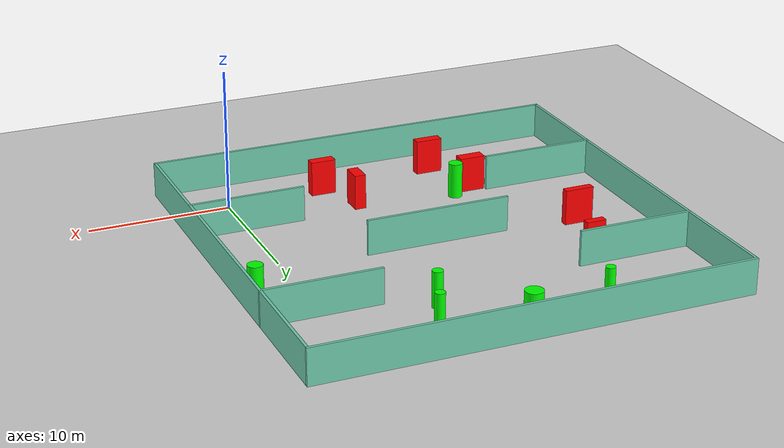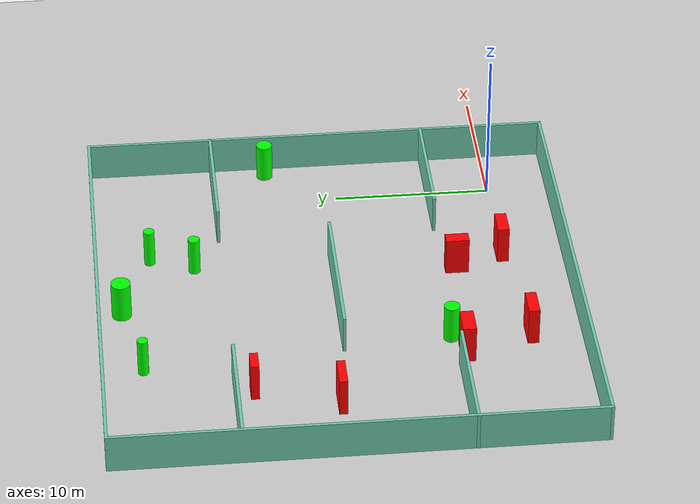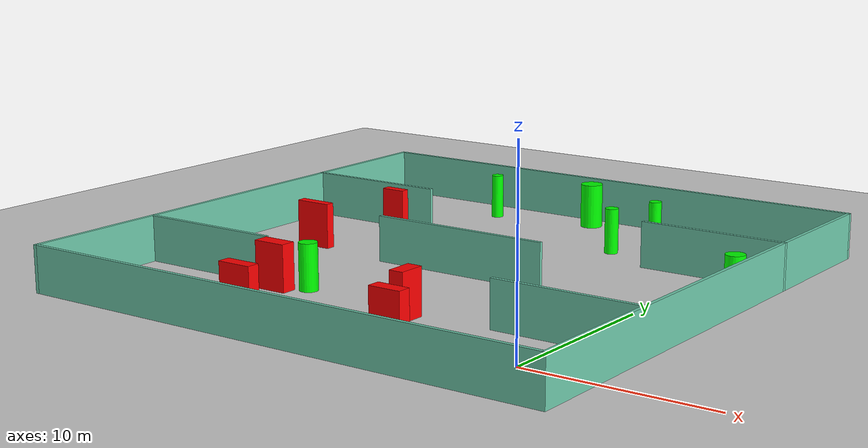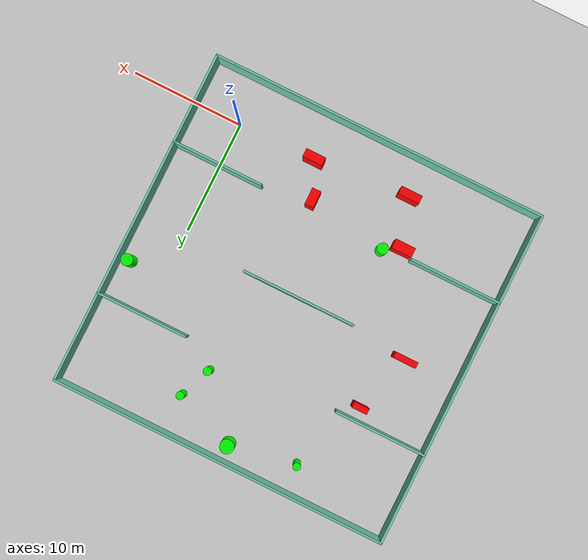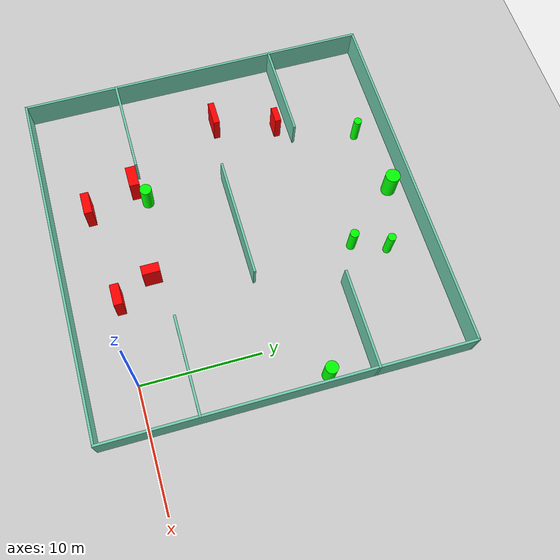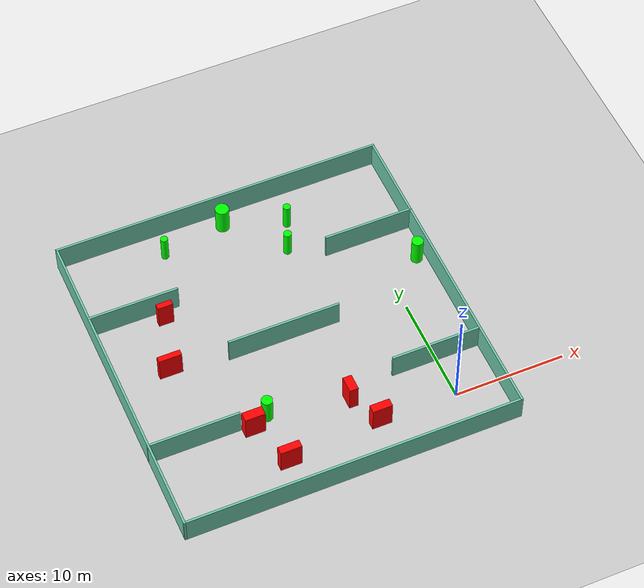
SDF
<sdf version="1.7">
 <world name="default">
  <light name="sun" type="directional">
   <pose>0 0 10 0 -0 0</pose>
   <diffuse>0.8 0.8 0.8 1</diffuse>
   <specular>0.2 0.2 0.2 1</specular>
   <attenuation>
    <range>1000</range>
    <constant>0.9</constant>
    <linear>0.01</linear>
    <quadratic>0.001</quadratic>
   </attenuation>
   <direction>-0.5 0.1 -0.9</direction>
   <spot><inner_angle>0</inner_angle><outer_angle>0</outer_angle><falloff>0</falloff></spot>
  </light>
  <model name="ground_plane">
   <static>1</static>
   <link name="link">
    <collision name="collision">
     <geometry><plane><normal>0 0 1</normal><size>100 100</size></plane></geometry>
     <surface>
      <contact><collide_bitmask>65535</collide_bitmask></contact>
      <friction><ode><mu>100</mu><mu2>50</mu2></ode></friction>
     </surface>
    </collision>
    <visual name="visual">
     <cast_shadows>0</cast_shadows>
     <geometry><plane><normal>0 0 1</normal><size>100 100</size></plane></geometry>
     <material>
      <script><uri>file://media/materials/scripts/gazebo.material</uri><name>Gazebo/Grey</name></script>
     </material>
    </visual>
   </link>
  </model>
  <gravity>0 0 -9.8</gravity>
  <magnetic_field>6e-06 2.3e-05 -4.2e-05</magnetic_field>
  <atmosphere type="adiabatic"/>
  <physics type="ode">
   <max_step_size>0.001</max_step_size>
   <real_time_factor>1</real_time_factor>
   <real_time_update_rate>1000</real_time_update_rate>
  </physics>
  <scene><ambient>0.4 0.4 0.4 1</ambient><background>0.7 0.7 0.7 1</background><shadows>1</shadows></scene>
  <spherical_coordinates>
   <surface_model>EARTH_WGS84</surface_model>
   <latitude_deg>0</latitude_deg>
   <longitude_deg>0</longitude_deg>
   <elevation>0</elevation>
   <heading_deg>0</heading_deg>
  </spherical_coordinates>
  <model name="my_base_walls">
   <link name="Wall_10">
    <collision name="Wall_10_Collision">
     <geometry><box><size>8.2 0.2 2.5</size></box></geometry>
     <pose>0 0 1.25 0 -0 0</pose>
    </collision>
    <visual name="Wall_10_Visual">
     <pose>0 0 1.25 0 -0 0</pose>
     <geometry><box><size>8.2 0.2 2.5</size></box></geometry>
     <material>
      <script><uri>file://media/materials/scripts/gazebo.material</uri><name>Gazebo/Grey</name></script>
      <ambient>0.435294 0.796078 0.67451 1</ambient>
     </material>
     <meta><layer>0</layer></meta>
    </visual>
    <pose>-11 -7 0 0 -0 0</pose>
   </link>
   <link name="Wall_12">
    <collision name="Wall_12_Collision">
     <geometry><box><size>8.2 0.2 2.5</size></box></geometry>
     <pose>0 0 1.25 0 -0 0</pose>
    </collision>
    <visual name="Wall_12_Visual">
     <pose>0 0 1.25 0 -0 0</pose>
     <geometry><box><size>8.2 0.2 2.5</size></box></geometry>
     <material>
      <script><uri>file://media/materials/scripts/gazebo.material</uri><name>Gazebo/Grey</name></script>
      <ambient>0.435294 0.796078 0.67451 1</ambient>
     </material>
     <meta><layer>0</layer></meta>
    </visual>
    <pose>-11 7 0 0 -0 0</pose>
   </link>
   <link name="Wall_14">
    <collision name="Wall_14_Collision">
     <geometry><box><size>8.2 0.2 2.5</size></box></geometry>
     <pose>0 0 1.25 0 -0 0</pose>
    </collision>
    <visual name="Wall_14_Visual">
     <pose>0 0 1.25 0 -0 0</pose>
     <geometry><box><size>8.2 0.2 2.5</size></box></geometry>
     <material>
      <script><uri>file://media/materials/scripts/gazebo.material</uri><name>Gazebo/Grey</name></script>
      <ambient>0.435294 0.796078 0.67451 1</ambient>
     </material>
     <meta><layer>0</layer></meta>
    </visual>
    <pose>11 7 0 0 -0 3.14159</pose>
   </link>
   <link name="Wall_16">
    <collision name="Wall_16_Collision">
     <geometry><box><size>10.2 0.2 2.5</size></box></geometry>
     <pose>0 0 1.25 0 -0 0</pose>
    </collision>
    <visual name="Wall_16_Visual">
     <pose>0 0 1.25 0 -0 0</pose>
     <geometry><box><size>10.2 0.2 2.5</size></box></geometry>
     <material>
      <script><uri>file://media/materials/scripts/gazebo.material</uri><name>Gazebo/Grey</name></script>
      <ambient>0.435294 0.796078 0.67451 1</ambient>
     </material>
     <meta><layer>0</layer></meta>
    </visual>
    <pose>0 0 0 0 -0 3.14159</pose>
   </link>
   <link name="Wall_2">
    <collision name="Wall_2_Collision">
     <geometry><box><size>30.2 0.2 2.5</size></box></geometry>
     <pose>0 0 1.25 0 -0 0</pose>
    </collision>
    <visual name="Wall_2_Visual">
     <pose>0 0 1.25 0 -0 0</pose>
     <geometry><box><size>30.2 0.2 2.5</size></box></geometry>
     <material>
      <script><uri>file://media/materials/scripts/gazebo.material</uri><name>Gazebo/Grey</name></script>
      <ambient>0.435294 0.796078 0.67451 1</ambient>
     </material>
     <meta><layer>0</layer></meta>
    </visual>
    <pose>0 -15 0 0 -0 3.14159</pose>
   </link>
   <link name="Wall_3">
    <collision name="Wall_3_Collision">
     <geometry><box><size>30.2 0.2 2.5</size></box></geometry>
     <pose>0 0 1.25 0 -0 0</pose>
    </collision>
    <visual name="Wall_3_Visual">
     <pose>0 0 1.25 0 -0 0</pose>
     <geometry><box><size>30.2 0.2 2.5</size></box></geometry>
     <material>
      <script><uri>file://media/materials/scripts/gazebo.material</uri><name>Gazebo/Grey</name></script>
      <ambient>0.435294 0.796078 0.67451 1</ambient>
     </material>
     <meta><layer>0</layer></meta>
    </visual>
    <pose>-15 0 0 0 -0 1.5708</pose>
   </link>
   <link name="Wall_4">
    <collision name="Wall_4_Collision">
     <geometry><box><size>30.2 0.2 2.5</size></box></geometry>
     <pose>0 0 1.25 0 -0 0</pose>
    </collision>
    <visual name="Wall_4_Visual">
     <pose>0 0 1.25 0 -0 0</pose>
     <geometry><box><size>30.2 0.2 2.5</size></box></geometry>
     <material>
      <script><uri>file://media/materials/scripts/gazebo.material</uri><name>Gazebo/Grey</name></script>
      <ambient>0.435294 0.796078 0.67451 1</ambient>
     </material>
     <meta><layer>0</layer></meta>
    </visual>
    <pose>0 15 0 0 -0 0</pose>
   </link>
   <link name="Wall_6">
    <collision name="Wall_6_Collision">
     <geometry><box><size>30.2 0.2 2.5</size></box></geometry>
     <pose>0 0 1.25 0 -0 0</pose>
    </collision>
    <visual name="Wall_6_Visual">
     <pose>0 0 1.25 0 -0 0</pose>
     <geometry><box><size>30.2 0.2 2.5</size></box></geometry>
     <material>
      <script><uri>file://media/materials/scripts/gazebo.material</uri><name>Gazebo/Grey</name></script>
      <ambient>0.435294 0.796078 0.67451 1</ambient>
     </material>
     <meta><layer>0</layer></meta>
    </visual>
    <pose>15 0 0 0 -0 1.5708</pose>
   </link>
   <link name="Wall_8">
    <collision name="Wall_8_Collision">
     <geometry><box><size>8.2 0.2 2.5</size></box></geometry>
     <pose>0 0 1.25 0 -0 0</pose>
    </collision>
    <visual name="Wall_8_Visual">
     <pose>0 0 1.25 0 -0 0</pose>
     <geometry><box><size>8.2 0.2 2.5</size></box></geometry>
     <material>
      <script><uri>file://media/materials/scripts/gazebo.material</uri><name>Gazebo/Grey</name></script>
      <ambient>0.435294 0.796078 0.67451 1</ambient>
     </material>
     <meta><layer>0</layer></meta>
    </visual>
    <pose>11 -7 0 0 -0 3.14159</pose>
   </link>
   <static>1</static>
   <pose>-11 11 0 0 -0 0</pose>
  </model>
  <model name="cylinder1">
   <static>1</static>
   <link name="link">
    <inertial>
     <mass>1</mass>
     <inertia><ixx>0.5</ixx><ixy>0</ixy><ixz>0</ixz><iyy>0.5</iyy><iyz>0</iyz><izz>1</izz></inertia>
    </inertial>
    <collision name="collision">
     <geometry><cylinder><radius>0.3342478060356267</radius><length>2.5</length></cylinder></geometry>
    </collision>
    <visual name="visual">
     <geometry><cylinder><radius>0.3342478060356267</radius><length>2.5</length></cylinder></geometry>
     <material>
      <ambient>0 1 0 1</ambient>
      <diffuse>0 1 0 1</diffuse>
      <specular>0.1 0.1 0.1 1</specular>
      <emissive>0 0 0 0</emissive>
     </material>
    </visual>
   </link>
   <pose>-17.02915045358167 23.45816184880063 1.25 0 0 0</pose>
  </model>
  <model name="cylinder2">
   <static>1</static>
   <link name="link">
    <inertial>
     <mass>1</mass>
     <inertia><ixx>0.5</ixx><ixy>0</ixy><ixz>0</ixz><iyy>0.5</iyy><iyz>0</iyz><izz>1</izz></inertia>
    </inertial>
    <collision name="collision">
     <geometry><cylinder><radius>0.6177499888174223</radius><length>2.5</length></cylinder></geometry>
    </collision>
    <visual name="visual">
     <geometry><cylinder><radius>0.6177499888174223</radius><length>2.5</length></cylinder></geometry>
     <material>
      <ambient>0 1 0 1</ambient>
      <diffuse>0 1 0 1</diffuse>
      <specular>0.1 0.1 0.1 1</specular>
      <emissive>0 0 0 0</emissive>
     </material>
    </visual>
   </link>
   <pose>-11.160935900040542 24.545791862449985 1.25 0 0 0</pose>
  </model>
  <model name="cylinder3">
   <static>1</static>
   <link name="link">
    <inertial>
     <mass>1</mass>
     <inertia><ixx>0.5</ixx><ixy>0</ixy><ixz>0</ixz><iyy>0.5</iyy><iyz>0</iyz><izz>1</izz></inertia>
    </inertial>
    <collision name="collision">
     <geometry><cylinder><radius>0.49368491179476887</radius><length>2.5</length></cylinder></geometry>
    </collision>
    <visual name="visual">
     <geometry><cylinder><radius>0.49368491179476887</radius><length>2.5</length></cylinder></geometry>
     <material>
      <ambient>0 1 0 1</ambient>
      <diffuse>0 1 0 1</diffuse>
      <specular>0.1 0.1 0.1 1</specular>
      <emissive>0 0 0 0</emissive>
     </material>
    </visual>
   </link>
   <pose>-15.394696040755878 4.265007991669336 1.25 0 0 0</pose>
  </model>
  <model name="cylinder4">
   <static>1</static>
   <link name="link">
    <inertial>
     <mass>1</mass>
     <inertia><ixx>0.5</ixx><ixy>0</ixy><ixz>0</ixz><iyy>0.5</iyy><iyz>0</iyz><izz>1</izz></inertia>
    </inertial>
    <collision name="collision">
     <geometry><cylinder><radius>0.3469649395759377</radius><length>2.5</length></cylinder></geometry>
    </collision>
    <visual name="visual">
     <geometry><cylinder><radius>0.3469649395759377</radius><length>2.5</length></cylinder></geometry>
     <material>
      <ambient>0 1 0 1</ambient>
      <diffuse>0 1 0 1</diffuse>
      <specular>0.1 0.1 0.1 1</specular>
      <emissive>0 0 0 0</emissive>
     </material>
    </visual>
   </link>
   <pose>-5.8460494890482 22.525660483606668 1.25 0 0 0</pose>
  </model>
  <model name="cylinder5">
   <static>1</static>
   <link name="link">
    <inertial>
     <mass>1</mass>
     <inertia><ixx>0.5</ixx><ixy>0</ixy><ixz>0</ixz><iyy>0.5</iyy><iyz>0</iyz><izz>1</izz></inertia>
    </inertial>
    <collision name="collision">
     <geometry><cylinder><radius>0.520314664300888</radius><length>2.5</length></cylinder></geometry>
    </collision>
    <visual name="visual">
     <geometry><cylinder><radius>0.520314664300888</radius><length>2.5</length></cylinder></geometry>
     <material>
      <ambient>0 1 0 1</ambient>
      <diffuse>0 1 0 1</diffuse>
      <specular>0.1 0.1 0.1 1</specular>
      <emissive>0 0 0 0</emissive>
     </material>
    </visual>
   </link>
   <pose>3.081626901722892 14.47387782141858 1.25 0 0 0</pose>
  </model>
  <model name="cylinder6">
   <static>1</static>
   <link name="link">
    <inertial>
     <mass>1</mass>
     <inertia><ixx>0.5</ixx><ixy>0</ixy><ixz>0</ixz><iyy>0.5</iyy><iyz>0</iyz><izz>1</izz></inertia>
    </inertial>
    <collision name="collision">
     <geometry><cylinder><radius>0.36994573118972807</radius><length>2.5</length></cylinder></geometry>
    </collision>
    <visual name="visual">
     <geometry><cylinder><radius>0.36994573118972807</radius><length>2.5</length></cylinder></geometry>
     <material>
      <ambient>0 1 0 1</ambient>
      <diffuse>0 1 0 1</diffuse>
      <specular>0.1 0.1 0.1 1</specular>
      <emissive>0 0 0 0</emissive>
     </material>
    </visual>
   </link>
   <pose>-6.965678834409323 19.726958237301204 1.25 0 0 0</pose>
  </model>
  <model name="box1">
   <static>1</static>
   <link name="link">
    <inertial>
     <mass>1</mass>
     <inertia><ixx>0.083</ixx><ixy>0</ixy><ixz>0</ixz><iyy>0.083</iyy><iyz>0</iyz><izz>0.083</izz></inertia>
    </inertial>
    <collision name="collision">
     <geometry><box><size>2.0628916345369497 0.5267554480590939 2.5</size></box></geometry>
    </collision>
    <visual name="visual">
     <geometry><box><size>2.0628916345369497 0.5267554480590939 2.5</size></box></geometry>
     <material>
      <ambient>1 0 0 1</ambient>
      <diffuse>1 0 0 1</diffuse>
      <specular>0.1 0.1 0.1 1</specular>
      <emissive>0 0 0 0</emissive>
     </material>
    </visual>
    <sensor name="my_contact" type="contact">
     <contact><collision>box_collision</collision><topic>__default_topic__</topic></contact>
    </sensor>
   </link>
   <pose>-21.160834611661535 11.642331556250983 1.25 0 0 0</pose>
  </model>
  <model name="box2">
   <static>1</static>
   <link name="link">
    <inertial>
     <mass>1</mass>
     <inertia><ixx>0.083</ixx><ixy>0</ixy><ixz>0</ixz><iyy>0.083</iyy><iyz>0</iyz><izz>0.083</izz></inertia>
    </inertial>
    <collision name="collision">
     <geometry><box><size>1.7804010673904616 0.7370438446313129 2.5</size></box></geometry>
    </collision>
    <visual name="visual">
     <geometry><box><size>1.7804010673904616 0.7370438446313129 2.5</size></box></geometry>
     <material>
      <ambient>1 0 0 1</ambient>
      <diffuse>1 0 0 1</diffuse>
      <specular>0.1 0.1 0.1 1</specular>
      <emissive>0 0 0 0</emissive>
     </material>
    </visual>
    <sensor name="my_contact" type="contact">
     <contact><collision>box_collision</collision><topic>__default_topic__</topic></contact>
    </sensor>
   </link>
   <pose>-6.962655985692599 -0.0013522207830165556 1.25 0 0 0</pose>
  </model>
  <model name="box3">
   <static>1</static>
   <link name="link">
    <inertial>
     <mass>1</mass>
     <inertia><ixx>0.083</ixx><ixy>0</ixy><ixz>0</ixz><iyy>0.083</iyy><iyz>0</iyz><izz>0.083</izz></inertia>
    </inertial>
    <collision name="collision">
     <geometry><box><size>1.9061759155332894 0.6982606868336316 2.5</size></box></geometry>
    </collision>
    <visual name="visual">
     <geometry><box><size>1.9061759155332894 0.6982606868336316 2.5</size></box></geometry>
     <material>
      <ambient>1 0 0 1</ambient>
      <diffuse>1 0 0 1</diffuse>
      <specular>0.1 0.1 0.1 1</specular>
      <emissive>0 0 0 0</emissive>
     </material>
    </visual>
    <sensor name="my_contact" type="contact">
     <contact><collision>box_collision</collision><topic>__default_topic__</topic></contact>
    </sensor>
   </link>
   <pose>-15.466359253699622 -0.7332504138199827 1.25 0 0 0</pose>
  </model>
  <model name="box4">
   <static>1</static>
   <link name="link">
    <inertial>
     <mass>1</mass>
     <inertia><ixx>0.083</ixx><ixy>0</ixy><ixz>0</ixz><iyy>0.083</iyy><iyz>0</iyz><izz>0.083</izz></inertia>
    </inertial>
    <collision name="collision">
     <geometry><box><size>0.7974682458613656 1.479601686820459 2.5</size></box></geometry>
    </collision>
    <visual name="visual">
     <geometry><box><size>0.7974682458613656 1.479601686820459 2.5</size></box></geometry>
     <material>
      <ambient>1 0 0 1</ambient>
      <diffuse>1 0 0 1</diffuse>
      <specular>0.1 0.1 0.1 1</specular>
      <emissive>0 0 0 0</emissive>
     </material>
    </visual>
    <sensor name="my_contact" type="contact">
     <contact><collision>box_collision</collision><topic>__default_topic__</topic></contact>
    </sensor>
   </link>
   <pose>-8.361738145558627 3.061799833701147 1.25 0 0 0</pose>
  </model>
  <model name="box5">
   <static>1</static>
   <link name="link">
    <inertial>
     <mass>1</mass>
     <inertia><ixx>0.083</ixx><ixy>0</ixy><ixz>0</ixz><iyy>0.083</iyy><iyz>0</iyz><izz>0.083</izz></inertia>
    </inertial>
    <collision name="collision">
     <geometry><box><size>1.3766138155962677 0.5254659694256495 2.5</size></box></geometry>
    </collision>
    <visual name="visual">
     <geometry><box><size>1.3766138155962677 0.5254659694256495 2.5</size></box></geometry>
     <material>
      <ambient>1 0 0 1</ambient>
      <diffuse>1 0 0 1</diffuse>
      <specular>0.1 0.1 0.1 1</specular>
      <emissive>0 0 0 0</emissive>
     </material>
    </visual>
    <sensor name="my_contact" type="contact">
     <contact><collision>box_collision</collision><topic>__default_topic__</topic></contact>
    </sensor>
   </link>
   <pose>-19.588453610303993 16.829413796729895 1.25 0 0 0</pose>
  </model>
  <model name="box6">
   <static>1</static>
   <link name="link">
    <inertial>
     <mass>1</mass>
     <inertia><ixx>0.083</ixx><ixy>0</ixy><ixz>0</ixz><iyy>0.083</iyy><iyz>0</iyz><izz>0.083</izz></inertia>
    </inertial>
    <collision name="collision">
     <geometry><box><size>1.8205620456754352 0.8458930374265123 2.5</size></box></geometry>
    </collision>
    <visual name="visual">
     <geometry><box><size>1.8205620456754352 0.8458930374265123 2.5</size></box></geometry>
     <material>
      <ambient>1 0 0 1</ambient>
      <diffuse>1 0 0 1</diffuse>
      <specular>0.1 0.1 0.1 1</specular>
      <emissive>0 0 0 0</emissive>
     </material>
    </visual>
    <sensor name="my_contact" type="contact">
     <contact><collision>box_collision</collision><topic>__default_topic__</topic></contact>
    </sensor>
   </link>
   <pose>-16.925821934973573 3.4641692950101968 1.25 0 0 0</pose>
  </model>
 </world>
</sdf>
